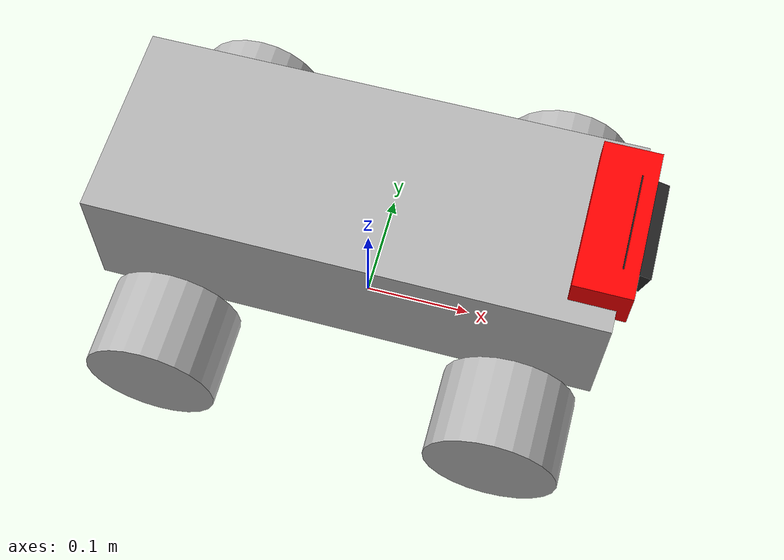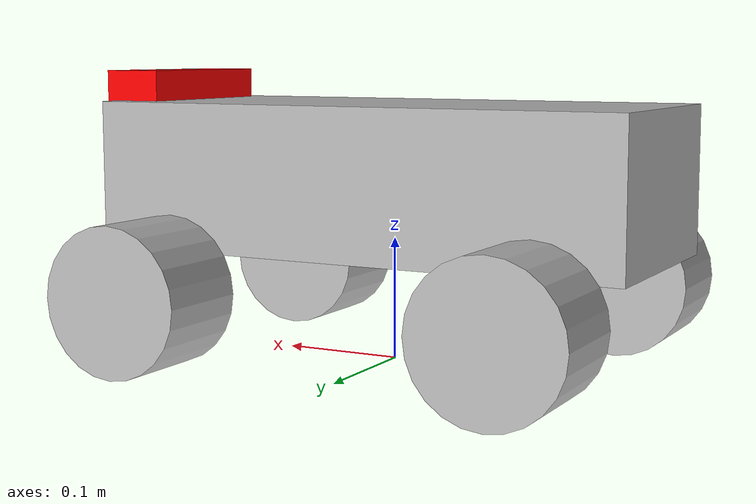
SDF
<?xml version="1.0" ?>
<sdf version="1.6">
  <model name='agrover_trx4'>

    <!-- Links                                                             -->

    <link name='base_link'>
      <!-- z=0.06 places base_link at wheel-centre height so wheels touch ground -->
      <pose relative_to='__model__'>0 0 0.06 0 0 0</pose>
      <inertial auto="true"/>
      <visual name='visual'>
        <!-- offset 0.09 m up so box bottom is at 90 mm above ground -->
        <pose>0 0 0.09 0 0 0</pose>
        <geometry>
          <box>
            <size>0.45 0.18 0.12</size>
          </box>
        </geometry>
      </visual>

      <visual name='front_marker'>
        <pose>0.21 0 0.155 0 0 0</pose>
        <geometry>
          <box>
            <size>0.05 0.14 0.04</size>
          </box>
        </geometry>
        <material>
          <ambient>1 0 0 1</ambient>
          <diffuse>1 0 0 1</diffuse>
          <specular>0.1 0.1 0.1 1</specular>
        </material>
      </visual>
      <collision name='collision'>
        <pose>0 0 0.09 0 0 0</pose>
        <geometry>
          <box>
            <size>0.45 0.18 0.12</size>
          </box>
        </geometry>
        <!-- density: 3.35 kg / (0.45*0.18*0.12 m^3) = 344.65 -> 345 kg/m^3 -->
        <density>345</density>
      </collision>

      <!-- Sensors — verbatim from rover_ackermann; names must not change  -->

      <sensor name="air_pressure_sensor" type="air_pressure">
        <always_on>1</always_on>
        <update_rate>50</update_rate>
        <air_pressure>
          <!-- Noise modeled after BMP390 -->
          <pressure>
            <noise type="gaussian">
              <mean>0</mean>
              <stddev>3</stddev>
            </noise>
          </pressure>
        </air_pressure>
      </sensor>

      <sensor name="magnetometer_sensor" type="magnetometer">
        <always_on>1</always_on>
        <update_rate>100</update_rate>
        <magnetometer>
          <!-- TODO: update to fix units and coordinate system when we move past Harmonic -->
          <!-- See https://github.com/gazebosim/gz-sim/pull/2460 -->
          <!-- 3mgauss RMS: NOTE: noise is in tesla but sensor reports data in gauss -->
          <!-- Noise modeled after IIS2MDC -->
          <x>
            <noise type="gaussian">
              <stddev>0.0001</stddev>
            </noise>
          </x>
          <y>
            <noise type="gaussian">
              <stddev>0.0001</stddev>
            </noise>
          </y>
          <z>
            <noise type="gaussian">
              <stddev>0.0001</stddev>
            </noise>
          </z>
        </magnetometer>
      </sensor>

      <sensor name="imu_sensor" type="imu">
        <always_on>1</always_on>
        <update_rate>250</update_rate>
        <imu>
          <angular_velocity>
            <!-- Noise modeled after IIM42653 -->
            <!-- 0.05 deg/s converted to rad/s -->
            <x>
              <noise type="gaussian">
                <mean>0.0</mean>
                <stddev>0.0008726646</stddev>
              </noise>
            </x>
            <y>
              <noise type="gaussian">
                <mean>0.0</mean>
                <stddev>0.0008726646</stddev>
              </noise>
            </y>
            <z>
              <noise type="gaussian">
                <mean>0.0</mean>
                <stddev>0.0008726646</stddev>
              </noise>
            </z>
          </angular_velocity>
          <linear_acceleration>
            <!-- Noise modeled after IIM42653 -->
            <!-- X & Y axis: 0.65 mg-rms converted to m/ss -->
            <x>
              <noise type="gaussian">
                <mean>0.0</mean>
                <stddev>0.00637</stddev>
              </noise>
            </x>
            <y>
              <noise type="gaussian">
                <mean>0.0</mean>
                <stddev>0.00637</stddev>
              </noise>
            </y>
            <!-- Z axis: 0.70 mg-rms converted to m/ss-->
            <z>
              <noise type="gaussian">
                <mean>0.0</mean>
                <stddev>0.00686</stddev>
              </noise>
            </z>
          </linear_acceleration>
        </imu>
      </sensor>

      <sensor name="navsat_sensor" type="navsat">
        <always_on>1</always_on>
        <update_rate>30</update_rate>
      </sensor>

      <!-- RealSense D435i-like RGBD camera — two separate sensors        -->
      <!-- (not rgbd_camera — avoids gz-sensors #545 frustum-offset bug)  -->
      <!-- Mount: x=0.23 y=0 z=0.16 in base_link frame, pitch=+0.262 rad -->
      <!--        (~15 deg nose-down, forward-facing, front-top of body)  -->

      <!-- Visual-only camera body box (no collision, no density ->
           no effect on auto-inertia / mass). Dark-grey slim bar
           representing the D435i housing (~25x90x25 mm). -->
      <visual name='d435i_body'>
        <pose>0.23 0 0.16 0 0.262 0</pose>
        <geometry>
          <box>
            <size>0.025 0.090 0.025</size>
          </box>
        </geometry>
        <material>
          <ambient>0.15 0.15 0.15 1</ambient>
          <diffuse>0.15 0.15 0.15 1</diffuse>
          <specular>0.1 0.1 0.1 1</specular>
        </material>
      </visual>

      <sensor name="d435i_color" type="camera">
        <pose relative_to="base_link">0.23 0 0.16 0 0.262 0</pose>
        <topic>camera/rgb</topic>
        <update_rate>30</update_rate>
        <always_on>1</always_on>
        <camera>
          <horizontal_fov>1.2113</horizontal_fov>
          <image>
            <width>640</width>
            <height>480</height>
            <format>RGB_INT8</format>
          </image>
          <clip>
            <near>0.1</near>
            <far>20.0</far>
          </clip>
          <noise>
            <type>gaussian</type>
            <mean>0.0</mean>
            <stddev>0.007</stddev>
          </noise>
          <optical_frame_id>d435i_color_optical</optical_frame_id>
        </camera>
      </sensor>

      <sensor name="d435i_depth" type="depth_camera">
        <pose relative_to="base_link">0.23 0 0.16 0 0.262 0</pose>
        <topic>camera/depth</topic>
        <update_rate>30</update_rate>
        <always_on>1</always_on>
        <camera>
          <horizontal_fov>1.5184</horizontal_fov>
          <image>
            <width>640</width>
            <height>480</height>
            <format>R_FLOAT32</format>
          </image>
          <clip>
            <near>0.105</near>
            <far>10.0</far>
          </clip>
          <depth_camera>
            <clip>
              <near>0.105</near>
              <far>10.0</far>
            </clip>
          </depth_camera>
          <noise>
            <type>gaussian</type>
            <mean>0.0</mean>
            <stddev>0.01</stddev>
          </noise>
          <optical_frame_id>d435i_depth_optical</optical_frame_id>
        </camera>
      </sensor>

    </link>

    <!-- Rear wheels — real physics, high-grip drive wheels             -->

    <link name='wheel_rear_left_link'>
      <!-- pose: x=-0.156 (rear axle), y=+0.133 (left), z=0 (wheel centre = base_link z) -->
      <pose relative_to="base_link">-0.156 0.133 0 -1.5707 0 0</pose>
      <inertial auto="true"/>
      <visual name='visual'>
        <geometry>
          <cylinder>
            <radius>0.06</radius>
            <length>0.08</length>
          </cylinder>
        </geometry>
      </visual>
      <collision name='collision'>
        <geometry>
          <cylinder>
            <radius>0.06</radius>
            <length>0.08</length>
          </cylinder>
        </geometry>
        <!-- density: 0.15 kg / (pi*0.06^2*0.08) = 165.79 -> 166 kg/m^3 -->
        <density>166</density>
        <surface>
          <friction>
            <ode>
              <mu>2.0</mu>
              <mu2>2.0</mu2>
              <fdir1>0 0 1</fdir1>
            </ode>
          </friction>
        </surface>
      </collision>
    </link>

    <link name='wheel_rear_right_link'>
      <!-- pose: x=-0.156 (rear axle), y=-0.133 (right), z=0 -->
      <pose relative_to="base_link">-0.156 -0.133 0 -1.5707 0 0</pose>
      <inertial auto="true"/>
      <visual name='visual'>
        <geometry>
          <cylinder>
            <radius>0.06</radius>
            <length>0.08</length>
          </cylinder>
        </geometry>
      </visual>
      <collision name='collision'>
        <geometry>
          <cylinder>
            <radius>0.06</radius>
            <length>0.08</length>
          </cylinder>
        </geometry>
        <!-- density: 0.15 kg / (pi*0.06^2*0.08) = 165.79 -> 166 kg/m^3 -->
        <density>166</density>
        <surface>
          <friction>
            <ode>
              <mu>2.0</mu>
              <mu2>2.0</mu2>
              <fdir1>0 0 1</fdir1>
            </ode>
          </friction>
        </surface>
      </collision>
    </link>

    <!-- Front steering intermediate links (carry the steering angle)   -->

    <link name="wheel_front_left_steering_link">
      <pose relative_to="wheel_front_left_link">0 0 0 0 0 0</pose>
      <inertial>
        <!-- Physical knuckle mass — a near-massless link between the steering
             and wheel joints makes the solver twitchy on the steering axis. -->
        <mass>0.05</mass>
        <inertia>
          <ixx>0.000018</ixx>
          <iyy>0.000018</iyy>
          <izz>0.000018</izz>
        </inertia>
      </inertial>
    </link>

    <link name="wheel_front_right_steering_link">
      <pose relative_to="wheel_front_right_link">0 0 0 0 0 0</pose>
      <inertial>
        <!-- Physical knuckle mass — a near-massless link between the steering
             and wheel joints makes the solver twitchy on the steering axis. -->
        <mass>0.05</mass>
        <inertia>
          <ixx>0.000018</ixx>
          <iyy>0.000018</iyy>
          <izz>0.000018</izz>
        </inertia>
      </inertial>
    </link>

    <!-- Front wheels — real physics, moderate-grip steered wheels      -->

    <link name='wheel_front_left_link'>
      <!-- pose: x=+0.156 (front axle), y=+0.133 (left), z=0 -->
      <pose relative_to="base_link">0.156 0.133 0 -1.5707 0 0</pose>
      <inertial auto="true"/>
      <visual name='visual'>
        <geometry>
          <cylinder>
            <radius>0.06</radius>
            <length>0.08</length>
          </cylinder>
        </geometry>
      </visual>
      <collision name='collision'>
        <geometry>
          <cylinder>
            <radius>0.06</radius>
            <length>0.08</length>
          </cylinder>
        </geometry>
        <!-- density: 0.15 kg / (pi*0.06^2*0.08) = 165.79 -> 166 kg/m^3 -->
        <density>166</density>
        <surface>
          <friction>
            <ode>
              <mu>2.0</mu>
              <mu2>2.0</mu2>
              <fdir1>0 0 1</fdir1>
            </ode>
          </friction>
        </surface>
      </collision>
    </link>

    <link name='wheel_front_right_link'>
      <!-- pose: x=+0.156 (front axle), y=-0.133 (right), z=0 -->
      <pose relative_to="base_link">0.156 -0.133 0 -1.5707 0 0</pose>
      <inertial auto="true"/>
      <visual name='visual'>
        <geometry>
          <cylinder>
            <radius>0.06</radius>
            <length>0.08</length>
          </cylinder>
        </geometry>
      </visual>
      <collision name='collision'>
        <geometry>
          <cylinder>
            <radius>0.06</radius>
            <length>0.08</length>
          </cylinder>
        </geometry>
        <!-- density: 0.15 kg / (pi*0.06^2*0.08) = 165.79 -> 166 kg/m^3 -->
        <density>166</density>
        <surface>
          <friction>
            <ode>
              <mu>2.0</mu>
              <mu2>2.0</mu2>
              <fdir1>0 0 1</fdir1>
            </ode>
          </friction>
        </surface>
      </collision>
    </link>

    <!-- Joints                                                            -->

    <joint name='wheel_rear_left_joint' type='revolute'>
      <pose relative_to='wheel_rear_left_link'/>
      <parent>base_link</parent>
      <child>wheel_rear_left_link</child>
      <axis>
        <xyz expressed_in='__model__'>0 1 0</xyz>
      </axis>
    </joint>

    <joint name='wheel_rear_right_joint' type='revolute'>
      <pose relative_to='wheel_rear_right_link'/>
      <parent>base_link</parent>
      <child>wheel_rear_right_link</child>
      <axis>
        <xyz expressed_in='__model__'>0 1 0</xyz>
      </axis>
    </joint>

    <!-- Front steering joints: axis z (in model frame), +-0.5236 rad limit, damped -->
    <joint name="wheel_front_left_steering_joint" type="revolute">
      <parent>base_link</parent>
      <child>wheel_front_left_steering_link</child>
      <pose relative_to="wheel_front_left_steering_link">0 0 0 0 0 0</pose>
      <axis>
        <xyz>0 0 1</xyz>
        <limit>
          <lower>-0.5236</lower>
          <upper>0.5236</upper>
          <effort>1e6</effort>
        </limit>
        <dynamics>
          <damping>0.5</damping>
          <friction>0</friction>
        </dynamics>
        <use_parent_model_frame>1</use_parent_model_frame>
      </axis>
    </joint>

    <joint name="wheel_front_right_steering_joint" type="revolute">
      <parent>base_link</parent>
      <child>wheel_front_right_steering_link</child>
      <pose relative_to="wheel_front_right_steering_link">0 0 0 0 0 0</pose>
      <axis>
        <xyz>0 0 1</xyz>
        <limit>
          <lower>-0.5236</lower>
          <upper>0.5236</upper>
          <effort>1e6</effort>
        </limit>
        <dynamics>
          <damping>0.5</damping>
          <friction>0</friction>
        </dynamics>
        <use_parent_model_frame>1</use_parent_model_frame>
      </axis>
    </joint>

    <!-- Front wheel spin joints (child of the steering link, not base_link directly) -->
    <joint name='wheel_front_left_joint' type='revolute'>
      <pose relative_to='wheel_front_left_link'/>
      <parent>wheel_front_left_steering_link</parent>
      <child>wheel_front_left_link</child>
      <axis>
        <xyz expressed_in='__model__'>0 1 0</xyz>
      </axis>
    </joint>

    <joint name='wheel_front_right_joint' type='revolute'>
      <pose relative_to='wheel_front_right_link'/>
      <parent>wheel_front_right_steering_link</parent>
      <child>wheel_front_right_link</child>
      <axis>
        <xyz expressed_in='__model__'>0 1 0</xyz>
      </axis>
    </joint>

    <!-- Plugins                                                           -->

    <!-- Rear-wheel drive plugins — command/motor_speed actuator 0, velocity control -->
    <!-- verbatim contract: topic, actuator_number, control_type must not change -->

    <plugin filename="gz-sim-joint-controller-system" name="gz::sim::systems::JointController">
      <joint_name>wheel_rear_left_joint</joint_name>
      <sub_topic>command/motor_speed</sub_topic>
      <control_type>velocity</control_type>
      <use_actuator_msg>true</use_actuator_msg>
      <actuator_number>0</actuator_number>
    </plugin>

    <plugin filename="gz-sim-joint-controller-system" name="gz::sim::systems::JointController">
      <joint_name>wheel_rear_right_joint</joint_name>
      <sub_topic>command/motor_speed</sub_topic>
      <control_type>velocity</control_type>
      <use_actuator_msg>true</use_actuator_msg>
      <actuator_number>0</actuator_number>
    </plugin>

    <plugin filename="gz-sim-ackermann-steering-system" name="gz::sim::systems::AckermannSteering">
      <steering_only>true</steering_only>
      <use_actuator_msg>false</use_actuator_msg>
      <sub_topic>servo_0</sub_topic>
      <left_steering_joint>wheel_front_left_steering_joint</left_steering_joint>
      <right_steering_joint>wheel_front_right_steering_joint</right_steering_joint>
      <wheel_base>0.312</wheel_base>
      <wheel_separation>0.266</wheel_separation>
      <kingpin_width>0.266</kingpin_width>
      <steering_limit>0.5236</steering_limit>
      <steer_p_gain>3.5</steer_p_gain>
    </plugin>

    <!-- Joint state publisher — only joints that exist in this model -->
    <plugin filename="gz-sim-joint-state-publisher-system" name="gz::sim::systems::JointStatePublisher">
      <joint_name>wheel_rear_left_joint</joint_name>
      <joint_name>wheel_rear_right_joint</joint_name>
      <joint_name>wheel_front_left_joint</joint_name>
      <joint_name>wheel_front_right_joint</joint_name>
      <joint_name>wheel_front_right_steering_joint</joint_name>
      <joint_name>wheel_front_left_steering_joint</joint_name>
    </plugin>

    <plugin filename="gz-sim-odometry-publisher-system" name="gz::sim::systems::OdometryPublisher">
      <odom_frame>odom</odom_frame>
      <robot_base_frame>base_link</robot_base_frame>
      <dimensions>3</dimensions>
      <odom_publish_frequency>30</odom_publish_frequency>
    </plugin>

  </model>
</sdf>
